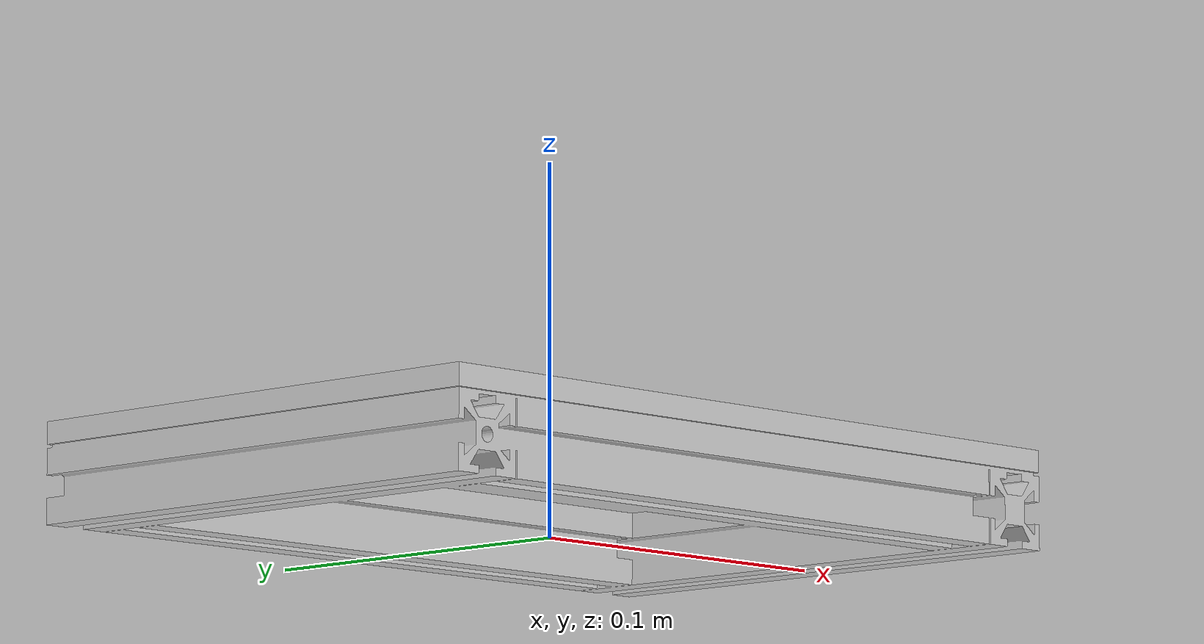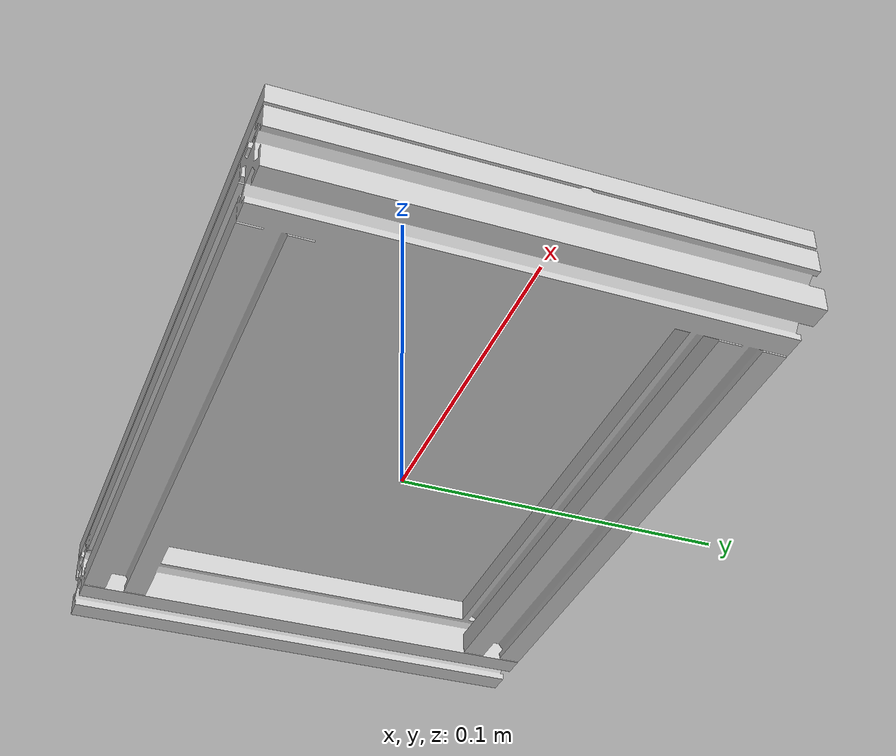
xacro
<?xml version="1.0" ?>
<robot xmlns:xacro="http://wiki.ros.org/xacro" name="storage_object">
    <xacro:macro name="storage_model_macro">
        <link name="target_storage">
            <visual>
                <geometry>
                    <mesh filename="package://mycobot_description/meshes/storage/visual/storage.dae"/>
                </geometry>
            </visual>
            <collision>
                <origin xyz="0 0 0" rpy="0 0 0"/>
                <geometry>
                    <mesh filename="package://mycobot_description/meshes/storage/collision/storage.stl"/>
                </geometry>
            </collision>
            <inertial>
              <mass value="10.0" />
              <origin xyz="0 0 0" rpy="0 0 0"/>
              <inertia ixx="1.0" ixy="0.0" ixz="0.0" iyy="1.0" iyz="0.0" izz="1.0" />
            </inertial>
        </link>
    </xacro:macro>

    <xacro:storage_model_macro />
</robot>
